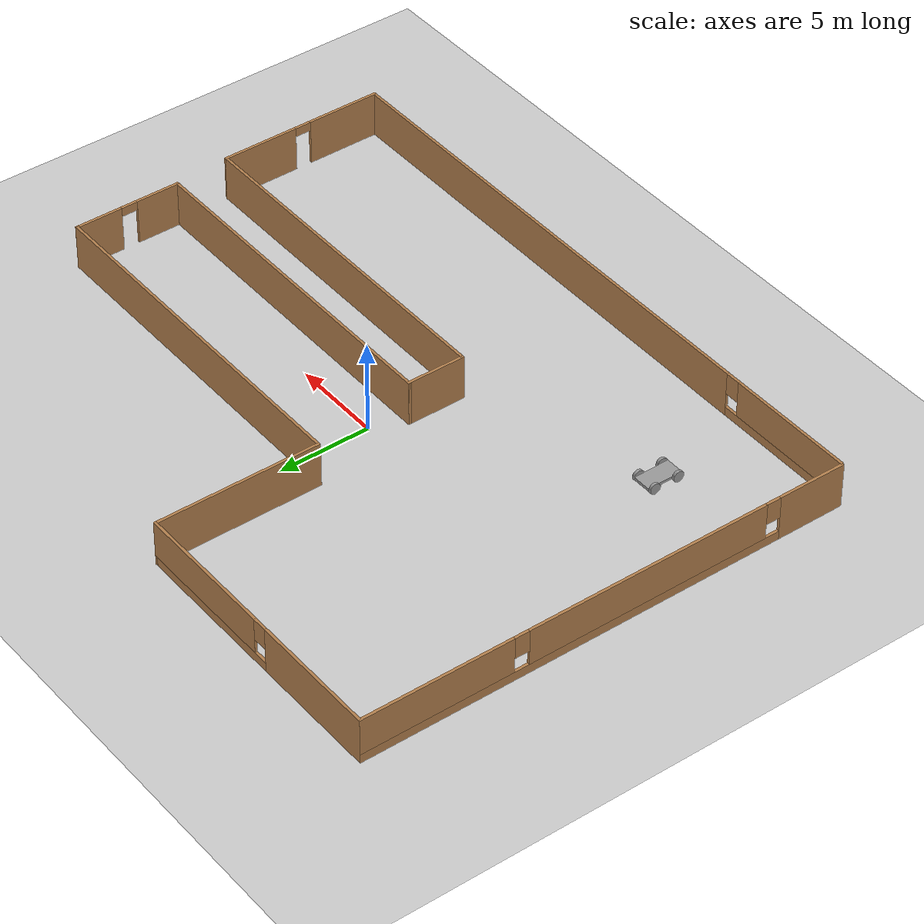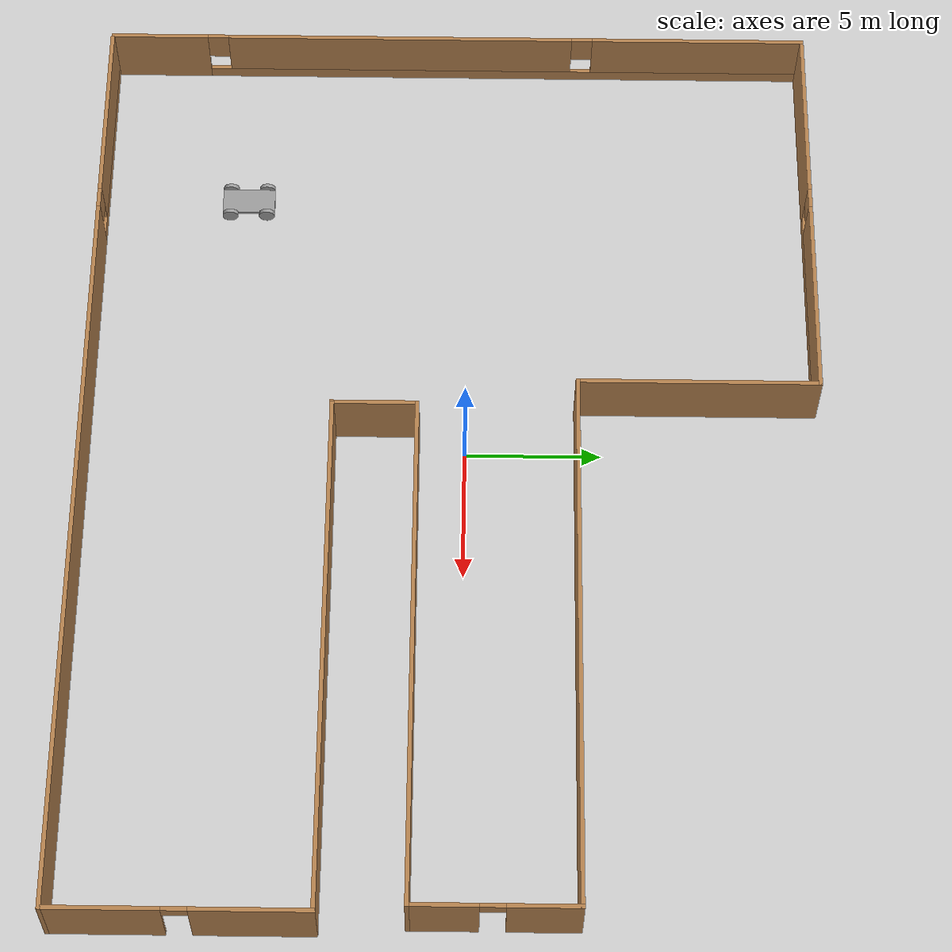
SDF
<sdf version="1.6">
 <world name="default">
  <model name="ground_plane">
   <static>1</static>
   <link name="link">
    <collision name="collision">
     <geometry><plane><normal>0 0 1</normal><size>100 100</size></plane></geometry>
     <surface>
      <contact><collide_bitmask>65535</collide_bitmask></contact>
      <friction><ode><mu>100</mu><mu2>50</mu2></ode></friction>
     </surface>
    </collision>
    <visual name="visual">
     <cast_shadows>0</cast_shadows>
     <geometry><plane><normal>0 0 1</normal><size>100 100</size></plane></geometry>
     <material>
      <script><uri>file://media/materials/scripts/gazebo.material</uri><name>Gazebo/Grey</name></script>
     </material>
    </visual>
   </link>
  </model>
  <model name="mybuilding_project1">
   <pose>0.6613 -0.499434 0 0 -0 0</pose>
   <link name="Wall_0">
    <pose>-17.85 0.025 0 0 -0 1.5708</pose>
    <visual name="Wall_0_Visual_0">
     <pose>-11.6282 0 1.25 0 -0 0</pose>
     <geometry><box><size>3.74368 0.15 2.5</size></box></geometry>
     <material>
      <script><uri>file://media/materials/scripts/gazebo.material</uri><name>Gazebo/Wood</name></script>
      <ambient>0.435294 0.796078 0.67451 1</ambient>
     </material>
     <meta><layer>0</layer></meta>
    </visual>
    <collision name="Wall_0_Collision_0">
     <geometry><box><size>3.74368 0.15 2.5</size></box></geometry>
     <pose>-11.6282 0 1.25 0 -0 0</pose>
    </collision>
    <visual name="Wall_0_Visual_1">
     <pose>1.87184 0 0.25 0 -0 0</pose>
     <geometry><box><size>23.2563 0.15 0.5</size></box></geometry>
     <material>
      <script><uri>file://media/materials/scripts/gazebo.material</uri><name>Gazebo/Wood</name></script>
      <ambient>0.435294 0.796078 0.67451 1</ambient>
     </material>
     <meta><layer>0</layer></meta>
    </visual>
    <collision name="Wall_0_Collision_1">
     <geometry><box><size>23.2563 0.15 0.5</size></box></geometry>
     <pose>1.87184 0 0.25 0 -0 0</pose>
    </collision>
    <visual name="Wall_0_Visual_2">
     <pose>-2.24985 0 1.5 0 -0 0</pose>
     <geometry><box><size>13.4129 0.15 2</size></box></geometry>
     <material>
      <script><uri>file://media/materials/scripts/gazebo.material</uri><name>Gazebo/Wood</name></script>
      <ambient>0.435294 0.796078 0.67451 1</ambient>
     </material>
     <meta><layer>0</layer></meta>
    </visual>
    <collision name="Wall_0_Collision_2">
     <geometry><box><size>13.4129 0.15 2</size></box></geometry>
     <pose>-2.24985 0 1.5 0 -0 0</pose>
    </collision>
    <visual name="Wall_0_Visual_3">
     <pose>9.37831 0 1.5 0 -0 0</pose>
     <geometry><box><size>8.24338 0.15 2</size></box></geometry>
     <material>
      <script><uri>file://media/materials/scripts/gazebo.material</uri><name>Gazebo/Wood</name></script>
      <ambient>0.435294 0.796078 0.67451 1</ambient>
     </material>
     <meta><layer>0</layer></meta>
    </visual>
    <collision name="Wall_0_Collision_3">
     <geometry><box><size>8.24338 0.15 2</size></box></geometry>
     <pose>9.37831 0 1.5 0 -0 0</pose>
    </collision>
    <visual name="Wall_0_Visual_4">
     <pose>-9.35632 0 1.9 0 -0 0</pose>
     <geometry><box><size>0.8 0.15 1.2</size></box></geometry>
     <material>
      <script><uri>file://media/materials/scripts/gazebo.material</uri><name>Gazebo/Wood</name></script>
      <ambient>0.435294 0.796078 0.67451 1</ambient>
     </material>
     <meta><layer>0</layer></meta>
    </visual>
    <collision name="Wall_0_Collision_4">
     <geometry><box><size>0.8 0.15 1.2</size></box></geometry>
     <pose>-9.35632 0 1.9 0 -0 0</pose>
    </collision>
    <visual name="Wall_0_Visual_5">
     <pose>4.85662 0 1.9 0 -0 0</pose>
     <geometry><box><size>0.8 0.15 1.2</size></box></geometry>
     <material>
      <script><uri>file://media/materials/scripts/gazebo.material</uri><name>Gazebo/Wood</name></script>
      <ambient>0.435294 0.796078 0.67451 1</ambient>
     </material>
     <meta><layer>0</layer></meta>
    </visual>
    <collision name="Wall_0_Collision_5">
     <geometry><box><size>0.8 0.15 1.2</size></box></geometry>
     <pose>4.85662 0 1.9 0 -0 0</pose>
    </collision>
   </link>
   <link name="Wall_1">
    <pose>-10.175 13.45 0 0 -0 0</pose>
    <visual name="Wall_1_Visual_0">
     <pose>-4.28195 0 1.25 0 -0 0</pose>
     <geometry><box><size>6.9361 0.15 2.5</size></box></geometry>
     <material>
      <script><uri>file://media/materials/scripts/gazebo.material</uri><name>Gazebo/Wood</name></script>
      <ambient>0.435294 0.796078 0.67451 1</ambient>
     </material>
     <meta><layer>0</layer></meta>
    </visual>
    <collision name="Wall_1_Collision_0">
     <geometry><box><size>6.9361 0.15 2.5</size></box></geometry>
     <pose>-4.28195 0 1.25 0 -0 0</pose>
    </collision>
    <visual name="Wall_1_Visual_1">
     <pose>3.46805 0 0.25 0 -0 0</pose>
     <geometry><box><size>8.5639 0.15 0.5</size></box></geometry>
     <material>
      <script><uri>file://media/materials/scripts/gazebo.material</uri><name>Gazebo/Wood</name></script>
      <ambient>0.435294 0.796078 0.67451 1</ambient>
     </material>
     <meta><layer>0</layer></meta>
    </visual>
    <collision name="Wall_1_Collision_1">
     <geometry><box><size>8.5639 0.15 0.5</size></box></geometry>
     <pose>3.46805 0 0.25 0 -0 0</pose>
    </collision>
    <visual name="Wall_1_Visual_2">
     <pose>3.86805 0 1.5 0 -0 0</pose>
     <geometry><box><size>7.7639 0.15 2</size></box></geometry>
     <material>
      <script><uri>file://media/materials/scripts/gazebo.material</uri><name>Gazebo/Wood</name></script>
      <ambient>0.435294 0.796078 0.67451 1</ambient>
     </material>
     <meta><layer>0</layer></meta>
    </visual>
    <collision name="Wall_1_Collision_2">
     <geometry><box><size>7.7639 0.15 2</size></box></geometry>
     <pose>3.86805 0 1.5 0 -0 0</pose>
    </collision>
    <visual name="Wall_1_Visual_3">
     <pose>-0.413897 0 1.9 0 -0 0</pose>
     <geometry><box><size>0.8 0.15 1.2</size></box></geometry>
     <material>
      <script><uri>file://media/materials/scripts/gazebo.material</uri><name>Gazebo/Wood</name></script>
      <ambient>0.435294 0.796078 0.67451 1</ambient>
     </material>
     <meta><layer>0</layer></meta>
    </visual>
    <collision name="Wall_1_Collision_3">
     <geometry><box><size>0.8 0.15 1.2</size></box></geometry>
     <pose>-0.413897 0 1.9 0 -0 0</pose>
    </collision>
   </link>
   <link name="Wall_2">
    <collision name="Wall_2_Collision">
     <geometry><box><size>9 0.15 2.5</size></box></geometry>
     <pose>0 0 1.25 0 -0 0</pose>
    </collision>
    <visual name="Wall_2_Visual">
     <pose>0 0 1.25 0 -0 0</pose>
     <geometry><box><size>9 0.15 2.5</size></box></geometry>
     <material>
      <script><uri>file://media/materials/scripts/gazebo.material</uri><name>Gazebo/Wood</name></script>
      <ambient>0.435294 0.796078 0.67451 1</ambient>
     </material>
     <meta><layer>0</layer></meta>
    </visual>
    <pose>-2.5 9.025 0 0 -0 -1.5708</pose>
   </link>
   <link name="Wall_3">
    <collision name="Wall_3_Collision">
     <geometry><box><size>20.25 0.15 2.5</size></box></geometry>
     <pose>0 0 1.25 0 -0 0</pose>
    </collision>
    <visual name="Wall_3_Visual">
     <pose>0 0 1.25 0 -0 0</pose>
     <geometry><box><size>20.25 0.15 2.5</size></box></geometry>
     <material>
      <script><uri>file://media/materials/scripts/gazebo.material</uri><name>Gazebo/Wood</name></script>
      <ambient>0.435294 0.796078 0.67451 1</ambient>
     </material>
     <meta><layer>0</layer></meta>
    </visual>
    <pose>7.55 4.6 0 0 -0 0</pose>
   </link>
   <link name="Wall_4">
    <pose>17.6 1.675 0 0 -0 -1.5708</pose>
    <visual name="Wall_4_Visual_0">
     <pose>-1.69782 0 1.25 0 -0 0</pose>
     <geometry><box><size>2.60436 0.15 2.5</size></box></geometry>
     <material>
      <script><uri>file://media/materials/scripts/gazebo.material</uri><name>Gazebo/Wood</name></script>
      <ambient>0.435294 0.796078 0.67451 1</ambient>
     </material>
     <meta><layer>0</layer></meta>
    </visual>
    <collision name="Wall_4_Collision_0">
     <geometry><box><size>2.60436 0.15 2.5</size></box></geometry>
     <pose>-1.69782 0 1.25 0 -0 0</pose>
    </collision>
    <visual name="Wall_4_Visual_1">
     <pose>1.75218 0 1.25 0 -0 0</pose>
     <geometry><box><size>2.49564 0.15 2.5</size></box></geometry>
     <material>
      <script><uri>file://media/materials/scripts/gazebo.material</uri><name>Gazebo/Wood</name></script>
      <ambient>0.435294 0.796078 0.67451 1</ambient>
     </material>
     <meta><layer>0</layer></meta>
    </visual>
    <collision name="Wall_4_Collision_1">
     <geometry><box><size>2.49564 0.15 2.5</size></box></geometry>
     <pose>1.75218 0 1.25 0 -0 0</pose>
    </collision>
    <visual name="Wall_4_Visual_2">
     <pose>0.054358 0 2.25 0 -0 0</pose>
     <geometry><box><size>0.9 0.15 0.5</size></box></geometry>
     <material>
      <script><uri>file://media/materials/scripts/gazebo.material</uri><name>Gazebo/Wood</name></script>
      <ambient>0.435294 0.796078 0.67451 1</ambient>
     </material>
     <meta><layer>0</layer></meta>
    </visual>
    <collision name="Wall_4_Collision_2">
     <geometry><box><size>0.9 0.15 0.5</size></box></geometry>
     <pose>0.054358 0 2.25 0 -0 0</pose>
    </collision>
   </link>
   <link name="Wall_5">
    <collision name="Wall_5_Collision">
     <geometry><box><size>19.25 0.15 2.5</size></box></geometry>
     <pose>0 0 1.25 0 -0 0</pose>
    </collision>
    <visual name="Wall_5_Visual">
     <pose>0 0 1.25 0 -0 0</pose>
     <geometry><box><size>19.25 0.15 2.5</size></box></geometry>
     <material>
      <script><uri>file://media/materials/scripts/gazebo.material</uri><name>Gazebo/Wood</name></script>
      <ambient>0.435294 0.796078 0.67451 1</ambient>
     </material>
     <meta><layer>0</layer></meta>
    </visual>
    <pose>8.05 -1.25 0 0 -0 3.14159</pose>
   </link>
   <link name="Wall_6">
    <collision name="Wall_6_Collision">
     <geometry><box><size>3.25 0.15 2.5</size></box></geometry>
     <pose>0 0 1.25 0 -0 0</pose>
    </collision>
    <visual name="Wall_6_Visual">
     <pose>0 0 1.25 0 -0 0</pose>
     <geometry><box><size>3.25 0.15 2.5</size></box></geometry>
     <material>
      <script><uri>file://media/materials/scripts/gazebo.material</uri><name>Gazebo/Wood</name></script>
      <ambient>0.435294 0.796078 0.67451 1</ambient>
     </material>
     <meta><layer>0</layer></meta>
    </visual>
    <pose>-1.5 -2.8 0 0 -0 -1.5708</pose>
   </link>
   <link name="Wall_7">
    <collision name="Wall_7_Collision">
     <geometry><box><size>19.5 0.15 2.5</size></box></geometry>
     <pose>0 0 1.25 0 -0 0</pose>
    </collision>
    <visual name="Wall_7_Visual">
     <pose>0 0 1.25 0 -0 0</pose>
     <geometry><box><size>19.5 0.15 2.5</size></box></geometry>
     <material>
      <script><uri>file://media/materials/scripts/gazebo.material</uri><name>Gazebo/Wood</name></script>
      <ambient>0.435294 0.796078 0.67451 1</ambient>
     </material>
     <meta><layer>0</layer></meta>
    </visual>
    <pose>8.175 -4.35 0 0 -0 0</pose>
   </link>
   <link name="Wall_8">
    <pose>17.85 -8.9 0 0 -0 -1.5708</pose>
    <visual name="Wall_8_Visual_0">
     <pose>-2.50642 0 1.25 0 -0 0</pose>
     <geometry><box><size>4.23715 0.15 2.5</size></box></geometry>
     <material>
      <script><uri>file://media/materials/scripts/gazebo.material</uri><name>Gazebo/Wood</name></script>
      <ambient>0.435294 0.796078 0.67451 1</ambient>
     </material>
     <meta><layer>0</layer></meta>
    </visual>
    <collision name="Wall_8_Collision_0">
     <geometry><box><size>4.23715 0.15 2.5</size></box></geometry>
     <pose>-2.50642 0 1.25 0 -0 0</pose>
    </collision>
    <visual name="Wall_8_Visual_1">
     <pose>2.56858 0 1.25 0 -0 0</pose>
     <geometry><box><size>4.11285 0.15 2.5</size></box></geometry>
     <material>
      <script><uri>file://media/materials/scripts/gazebo.material</uri><name>Gazebo/Wood</name></script>
      <ambient>0.435294 0.796078 0.67451 1</ambient>
     </material>
     <meta><layer>0</layer></meta>
    </visual>
    <collision name="Wall_8_Collision_1">
     <geometry><box><size>4.11285 0.15 2.5</size></box></geometry>
     <pose>2.56858 0 1.25 0 -0 0</pose>
    </collision>
    <visual name="Wall_8_Visual_2">
     <pose>0.062153 0 2.25 0 -0 0</pose>
     <geometry><box><size>0.9 0.15 0.5</size></box></geometry>
     <material>
      <script><uri>file://media/materials/scripts/gazebo.material</uri><name>Gazebo/Wood</name></script>
      <ambient>0.435294 0.796078 0.67451 1</ambient>
     </material>
     <meta><layer>0</layer></meta>
    </visual>
    <collision name="Wall_8_Collision_2">
     <geometry><box><size>0.9 0.15 0.5</size></box></geometry>
     <pose>0.062153 0 2.25 0 -0 0</pose>
    </collision>
   </link>
   <link name="Wall_9">
    <pose>0.05 -13.45 0 0 -0 3.14159</pose>
    <visual name="Wall_9_Visual_0">
     <pose>-3.97187 0 1.25 0 -0 0</pose>
     <geometry><box><size>27.8063 0.15 2.5</size></box></geometry>
     <material>
      <script><uri>file://media/materials/scripts/gazebo.material</uri><name>Gazebo/Wood</name></script>
      <ambient>0.435294 0.796078 0.67451 1</ambient>
     </material>
     <meta><layer>0</layer></meta>
    </visual>
    <collision name="Wall_9_Collision_0">
     <geometry><box><size>27.8063 0.15 2.5</size></box></geometry>
     <pose>-3.97187 0 1.25 0 -0 0</pose>
    </collision>
    <visual name="Wall_9_Visual_1">
     <pose>13.9031 0 0.25 0 -0 0</pose>
     <geometry><box><size>7.94374 0.15 0.5</size></box></geometry>
     <material>
      <script><uri>file://media/materials/scripts/gazebo.material</uri><name>Gazebo/Wood</name></script>
      <ambient>0.435294 0.796078 0.67451 1</ambient>
     </material>
     <meta><layer>0</layer></meta>
    </visual>
    <collision name="Wall_9_Collision_1">
     <geometry><box><size>7.94374 0.15 0.5</size></box></geometry>
     <pose>13.9031 0 0.25 0 -0 0</pose>
    </collision>
    <visual name="Wall_9_Visual_2">
     <pose>14.3031 0 1.5 0 -0 0</pose>
     <geometry><box><size>7.14374 0.15 2</size></box></geometry>
     <material>
      <script><uri>file://media/materials/scripts/gazebo.material</uri><name>Gazebo/Wood</name></script>
      <ambient>0.435294 0.796078 0.67451 1</ambient>
     </material>
     <meta><layer>0</layer></meta>
    </visual>
    <collision name="Wall_9_Collision_2">
     <geometry><box><size>7.14374 0.15 2</size></box></geometry>
     <pose>14.3031 0 1.5 0 -0 0</pose>
    </collision>
    <visual name="Wall_9_Visual_3">
     <pose>10.3313 0 1.9 0 -0 0</pose>
     <geometry><box><size>0.8 0.15 1.2</size></box></geometry>
     <material>
      <script><uri>file://media/materials/scripts/gazebo.material</uri><name>Gazebo/Wood</name></script>
      <ambient>0.435294 0.796078 0.67451 1</ambient>
     </material>
     <meta><layer>0</layer></meta>
    </visual>
    <collision name="Wall_9_Collision_3">
     <geometry><box><size>0.8 0.15 1.2</size></box></geometry>
     <pose>10.3313 0 1.9 0 -0 0</pose>
    </collision>
   </link>
   <static>1</static>
  </model>
  <model name="myrobot_project1">
   <link name="link_0">
    <inertial>
     <mass>1</mass>
     <inertia>
      <ixx>0.166667</ixx>
      <ixy>0</ixy>
      <ixz>0</ixz>
      <iyy>0.166667</iyy>
      <iyz>0</iyz>
      <izz>0.166667</izz>
     </inertia>
    </inertial>
    <pose>-4.00666 -6.32135 0.247721 0 -0 0</pose>
    <visual name="visual">
     <geometry><box><size>1 2 0.15</size></box></geometry>
     <material>
      <lighting>1</lighting>
      <script><uri>file://media/materials/scripts/gazebo.material</uri><name>Gazebo/Grey</name></script>
      <shader type="pixel"><normal_map>__default__</normal_map></shader>
      <ambient>0.3 0.3 0.3 1</ambient>
      <diffuse>0.7 0.7 0.7 1</diffuse>
      <specular>0.01 0.01 0.01 1</specular>
      <emissive>0 0 0 1</emissive>
     </material>
    </visual>
    <collision name="collision">
     <geometry><box><size>1 2 0.15</size></box></geometry>
     <surface>
      <friction>
       <ode><mu>1</mu><mu2>1</mu2><fdir1>0 0 0</fdir1><slip1>0</slip1><slip2>0</slip2></ode>
       <torsional>
        <coefficient>1</coefficient>
        <patch_radius>0</patch_radius>
        <surface_radius>0</surface_radius>
        <use_patch_radius>1</use_patch_radius>
        <ode><slip>0</slip></ode>
       </torsional>
      </friction>
      <bounce><restitution_coefficient>0</restitution_coefficient><threshold>1e+06</threshold></bounce>
      <contact>
       <collide_without_contact>0</collide_without_contact>
       <collide_without_contact_bitmask>1</collide_without_contact_bitmask>
       <collide_bitmask>1</collide_bitmask>
       <ode>
        <soft_cfm>0</soft_cfm>
        <soft_erp>0.2</soft_erp>
        <kp>1e+13</kp>
        <kd>1</kd>
        <max_vel>0.01</max_vel>
        <min_depth>0</min_depth>
       </ode>
       <bullet>
        <split_impulse>1</split_impulse>
        <split_impulse_penetration_threshold>-0.01</split_impulse_penetration_threshold>
        <soft_cfm>0</soft_cfm>
        <soft_erp>0.2</soft_erp>
        <kp>1e+13</kp>
        <kd>1</kd>
       </bullet>
      </contact>
     </surface>
    </collision>
   </link>
   <link name="link_1">
    <inertial>
     <mass>1</mass>
     <inertia><ixx>0.145833</ixx><ixy>0</ixy><ixz>0</ixz><iyy>0.145833</iyy><iyz>0</iyz><izz>0.125</izz></inertia>
    </inertial>
    <pose>-4.58166 -5.62135 0.247721 6e-06 1.5707 6e-06</pose>
    <visual name="visual">
     <geometry><cylinder><radius>0.3</radius><length>0.15</length></cylinder></geometry>
     <material>
      <lighting>1</lighting>
      <script><uri>file://media/materials/scripts/gazebo.material</uri><name>Gazebo/Grey</name></script>
      <shader type="pixel"><normal_map>__default__</normal_map></shader>
      <ambient>0.3 0.3 0.3 1</ambient>
      <diffuse>0.7 0.7 0.7 1</diffuse>
      <specular>0.01 0.01 0.01 1</specular>
      <emissive>0 0 0 1</emissive>
     </material>
    </visual>
    <collision name="collision">
     <geometry><cylinder><radius>0.3</radius><length>0.15</length></cylinder></geometry>
     <surface>
      <friction>
       <ode><mu>1</mu><mu2>1</mu2><fdir1>0 0 0</fdir1><slip1>0</slip1><slip2>0</slip2></ode>
       <torsional>
        <coefficient>1</coefficient>
        <patch_radius>0</patch_radius>
        <surface_radius>0</surface_radius>
        <use_patch_radius>1</use_patch_radius>
        <ode><slip>0</slip></ode>
       </torsional>
      </friction>
      <bounce><restitution_coefficient>0</restitution_coefficient><threshold>1e+06</threshold></bounce>
      <contact>
       <collide_without_contact>0</collide_without_contact>
       <collide_without_contact_bitmask>1</collide_without_contact_bitmask>
       <collide_bitmask>1</collide_bitmask>
       <ode>
        <soft_cfm>0</soft_cfm>
        <soft_erp>0.2</soft_erp>
        <kp>1e+13</kp>
        <kd>1</kd>
        <max_vel>0.01</max_vel>
        <min_depth>0</min_depth>
       </ode>
       <bullet>
        <split_impulse>1</split_impulse>
        <split_impulse_penetration_threshold>-0.01</split_impulse_penetration_threshold>
        <soft_cfm>0</soft_cfm>
        <soft_erp>0.2</soft_erp>
        <kp>1e+13</kp>
        <kd>1</kd>
       </bullet>
      </contact>
     </surface>
    </collision>
   </link>
   <link name="link_1_clone">
    <inertial>
     <mass>1</mass>
     <inertia><ixx>0.145833</ixx><ixy>0</ixy><ixz>0</ixz><iyy>0.145833</iyy><iyz>0</iyz><izz>0.125</izz></inertia>
    </inertial>
    <pose>-3.43166 -5.62135 0.247721 6e-06 1.5707 6e-06</pose>
    <visual name="visual">
     <geometry><cylinder><radius>0.3</radius><length>0.15</length></cylinder></geometry>
     <material>
      <lighting>1</lighting>
      <script><uri>file://media/materials/scripts/gazebo.material</uri><name>Gazebo/Grey</name></script>
      <shader type="pixel"><normal_map>__default__</normal_map></shader>
      <ambient>0.3 0.3 0.3 1</ambient>
      <diffuse>0.7 0.7 0.7 1</diffuse>
      <specular>0.01 0.01 0.01 1</specular>
      <emissive>0 0 0 1</emissive>
     </material>
    </visual>
    <collision name="collision">
     <geometry><cylinder><radius>0.3</radius><length>0.15</length></cylinder></geometry>
     <surface>
      <friction>
       <ode><mu>1</mu><mu2>1</mu2><fdir1>0 0 0</fdir1><slip1>0</slip1><slip2>0</slip2></ode>
       <torsional>
        <coefficient>1</coefficient>
        <patch_radius>0</patch_radius>
        <surface_radius>0</surface_radius>
        <use_patch_radius>1</use_patch_radius>
        <ode><slip>0</slip></ode>
       </torsional>
      </friction>
      <bounce><restitution_coefficient>0</restitution_coefficient><threshold>1e+06</threshold></bounce>
      <contact>
       <collide_without_contact>0</collide_without_contact>
       <collide_without_contact_bitmask>1</collide_without_contact_bitmask>
       <collide_bitmask>1</collide_bitmask>
       <ode>
        <soft_cfm>0</soft_cfm>
        <soft_erp>0.2</soft_erp>
        <kp>1e+13</kp>
        <kd>1</kd>
        <max_vel>0.01</max_vel>
        <min_depth>0</min_depth>
       </ode>
       <bullet>
        <split_impulse>1</split_impulse>
        <split_impulse_penetration_threshold>-0.01</split_impulse_penetration_threshold>
        <soft_cfm>0</soft_cfm>
        <soft_erp>0.2</soft_erp>
        <kp>1e+13</kp>
        <kd>1</kd>
       </bullet>
      </contact>
     </surface>
    </collision>
   </link>
   <link name="link_1_clone_0">
    <inertial>
     <mass>1</mass>
     <inertia><ixx>0.145833</ixx><ixy>0</ixy><ixz>0</ixz><iyy>0.145833</iyy><iyz>0</iyz><izz>0.125</izz></inertia>
    </inertial>
    <pose>-3.43166 -7.02135 0.247721 6e-06 1.5707 6e-06</pose>
    <visual name="visual">
     <geometry><cylinder><radius>0.3</radius><length>0.15</length></cylinder></geometry>
     <material>
      <lighting>1</lighting>
      <script><uri>file://media/materials/scripts/gazebo.material</uri><name>Gazebo/Grey</name></script>
      <shader type="pixel"><normal_map>__default__</normal_map></shader>
      <ambient>0.3 0.3 0.3 1</ambient>
      <diffuse>0.7 0.7 0.7 1</diffuse>
      <specular>0.01 0.01 0.01 1</specular>
      <emissive>0 0 0 1</emissive>
     </material>
    </visual>
    <collision name="collision">
     <geometry><cylinder><radius>0.3</radius><length>0.15</length></cylinder></geometry>
     <surface>
      <friction>
       <ode><mu>1</mu><mu2>1</mu2><fdir1>0 0 0</fdir1><slip1>0</slip1><slip2>0</slip2></ode>
       <torsional>
        <coefficient>1</coefficient>
        <patch_radius>0</patch_radius>
        <surface_radius>0</surface_radius>
        <use_patch_radius>1</use_patch_radius>
        <ode><slip>0</slip></ode>
       </torsional>
      </friction>
      <bounce><restitution_coefficient>0</restitution_coefficient><threshold>1e+06</threshold></bounce>
      <contact>
       <collide_without_contact>0</collide_without_contact>
       <collide_without_contact_bitmask>1</collide_without_contact_bitmask>
       <collide_bitmask>1</collide_bitmask>
       <ode>
        <soft_cfm>0</soft_cfm>
        <soft_erp>0.2</soft_erp>
        <kp>1e+13</kp>
        <kd>1</kd>
        <max_vel>0.01</max_vel>
        <min_depth>0</min_depth>
       </ode>
       <bullet>
        <split_impulse>1</split_impulse>
        <split_impulse_penetration_threshold>-0.01</split_impulse_penetration_threshold>
        <soft_cfm>0</soft_cfm>
        <soft_erp>0.2</soft_erp>
        <kp>1e+13</kp>
        <kd>1</kd>
       </bullet>
      </contact>
     </surface>
    </collision>
   </link>
   <link name="link_1_clone_1">
    <inertial>
     <mass>1</mass>
     <inertia><ixx>0.145833</ixx><ixy>0</ixy><ixz>0</ixz><iyy>0.145833</iyy><iyz>0</iyz><izz>0.125</izz></inertia>
    </inertial>
    <pose>-4.58166 -7.02135 0.247721 6e-06 1.5707 6e-06</pose>
    <visual name="visual">
     <geometry><cylinder><radius>0.3</radius><length>0.15</length></cylinder></geometry>
     <material>
      <lighting>1</lighting>
      <script><uri>file://media/materials/scripts/gazebo.material</uri><name>Gazebo/Grey</name></script>
      <shader type="pixel"><normal_map>__default__</normal_map></shader>
      <ambient>0.3 0.3 0.3 1</ambient>
      <diffuse>0.7 0.7 0.7 1</diffuse>
      <specular>0.01 0.01 0.01 1</specular>
      <emissive>0 0 0 1</emissive>
     </material>
    </visual>
    <collision name="collision">
     <geometry><cylinder><radius>0.3</radius><length>0.15</length></cylinder></geometry>
     <surface>
      <friction>
       <ode><mu>1</mu><mu2>1</mu2><fdir1>0 0 0</fdir1><slip1>0</slip1><slip2>0</slip2></ode>
       <torsional>
        <coefficient>1</coefficient>
        <patch_radius>0</patch_radius>
        <surface_radius>0</surface_radius>
        <use_patch_radius>1</use_patch_radius>
        <ode><slip>0</slip></ode>
       </torsional>
      </friction>
      <bounce><restitution_coefficient>0</restitution_coefficient><threshold>1e+06</threshold></bounce>
      <contact>
       <collide_without_contact>0</collide_without_contact>
       <collide_without_contact_bitmask>1</collide_without_contact_bitmask>
       <collide_bitmask>1</collide_bitmask>
       <ode>
        <soft_cfm>0</soft_cfm>
        <soft_erp>0.2</soft_erp>
        <kp>1e+13</kp>
        <kd>1</kd>
        <max_vel>0.01</max_vel>
        <min_depth>0</min_depth>
       </ode>
       <bullet>
        <split_impulse>1</split_impulse>
        <split_impulse_penetration_threshold>-0.01</split_impulse_penetration_threshold>
        <soft_cfm>0</soft_cfm>
        <soft_erp>0.2</soft_erp>
        <kp>1e+13</kp>
        <kd>1</kd>
       </bullet>
      </contact>
     </surface>
    </collision>
   </link>
   <joint name="link_0_JOINT_0" type="revolute">
    <parent>link_0</parent>
    <child>link_1</child>
    <axis>
     <xyz>0 0 1</xyz>
     <use_parent_model_frame>0</use_parent_model_frame>
     <limit>
      <lower>-1.79769e+308</lower>
      <upper>1.79769e+308</upper>
      <effort>-1</effort>
      <velocity>-1</velocity>
     </limit>
     <dynamics>
      <spring_reference>0</spring_reference>
      <spring_stiffness>0</spring_stiffness>
      <damping>0</damping>
      <friction>0</friction>
     </dynamics>
    </axis>
    <physics>
     <ode><limit><cfm>0</cfm><erp>0.2</erp></limit><suspension><cfm>0</cfm><erp>0.2</erp></suspension></ode>
    </physics>
   </joint>
   <joint name="link_0_JOINT_1" type="revolute">
    <parent>link_0</parent>
    <child>link_1_clone</child>
    <axis>
     <xyz>0 0 1</xyz>
     <use_parent_model_frame>0</use_parent_model_frame>
     <limit>
      <lower>-1.79769e+308</lower>
      <upper>1.79769e+308</upper>
      <effort>-1</effort>
      <velocity>-1</velocity>
     </limit>
     <dynamics>
      <spring_reference>0</spring_reference>
      <spring_stiffness>0</spring_stiffness>
      <damping>0</damping>
      <friction>0</friction>
     </dynamics>
    </axis>
    <physics>
     <ode><limit><cfm>0</cfm><erp>0.2</erp></limit><suspension><cfm>0</cfm><erp>0.2</erp></suspension></ode>
    </physics>
   </joint>
   <joint name="link_0_JOINT_2" type="revolute">
    <parent>link_0</parent>
    <child>link_1_clone_1</child>
    <axis>
     <xyz>0 0 1</xyz>
     <use_parent_model_frame>0</use_parent_model_frame>
     <limit>
      <lower>-1.79769e+308</lower>
      <upper>1.79769e+308</upper>
      <effort>-1</effort>
      <velocity>-1</velocity>
     </limit>
     <dynamics>
      <spring_reference>0</spring_reference>
      <spring_stiffness>0</spring_stiffness>
      <damping>0</damping>
      <friction>0</friction>
     </dynamics>
    </axis>
    <physics>
     <ode><limit><cfm>0</cfm><erp>0.2</erp></limit><suspension><cfm>0</cfm><erp>0.2</erp></suspension></ode>
    </physics>
   </joint>
   <joint name="link_0_JOINT_3" type="revolute">
    <parent>link_0</parent>
    <child>link_1_clone_0</child>
    <axis>
     <xyz>0 0 1</xyz>
     <use_parent_model_frame>0</use_parent_model_frame>
     <limit>
      <lower>-1.79769e+308</lower>
      <upper>1.79769e+308</upper>
      <effort>-1</effort>
      <velocity>-1</velocity>
     </limit>
     <dynamics>
      <spring_reference>0</spring_reference>
      <spring_stiffness>0</spring_stiffness>
      <damping>0</damping>
      <friction>0</friction>
     </dynamics>
    </axis>
    <physics>
     <ode><limit><cfm>0</cfm><erp>0.2</erp></limit><suspension><cfm>0</cfm><erp>0.2</erp></suspension></ode>
    </physics>
   </joint>
   <static>0</static>
   <pose>-6.97227 -2.09392 0.052286 0 -0 0.009903</pose>
  </model>
 </world>
</sdf>
